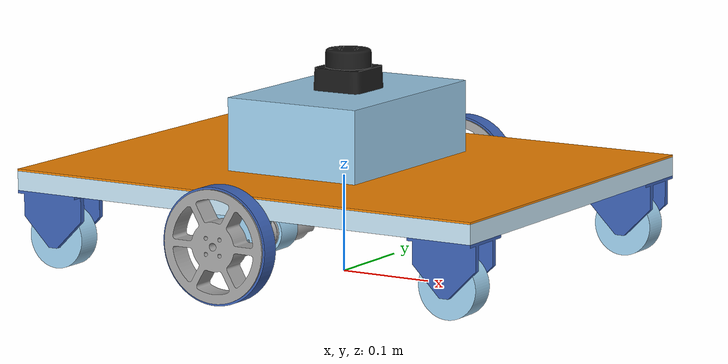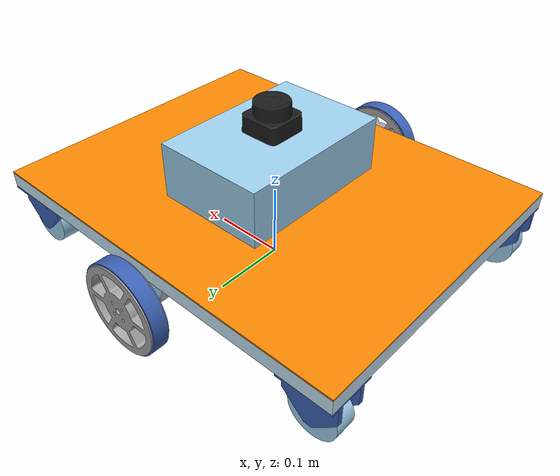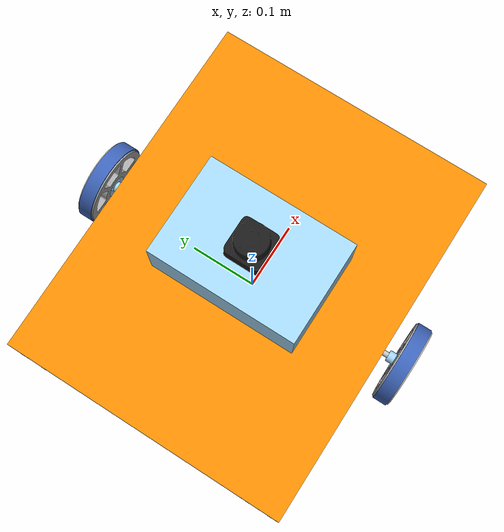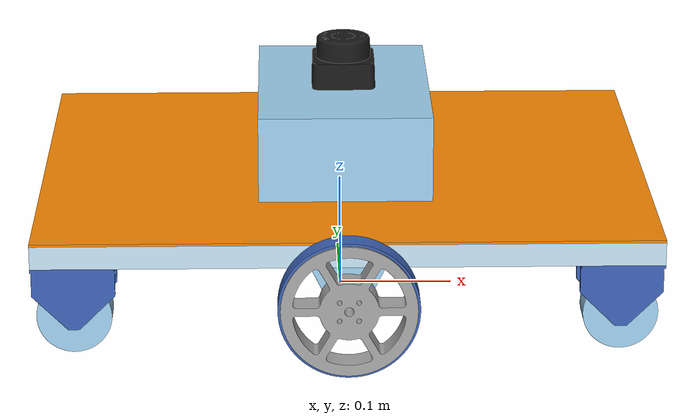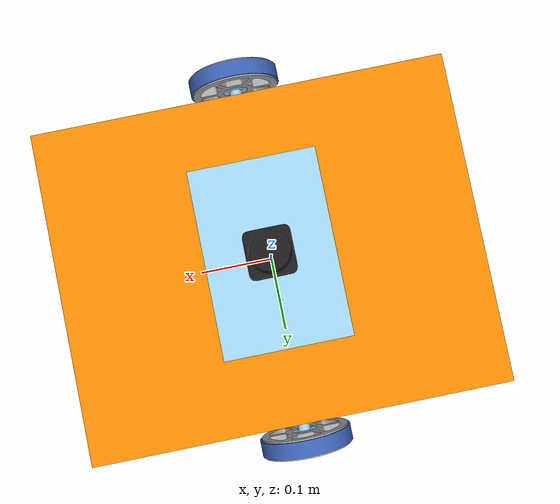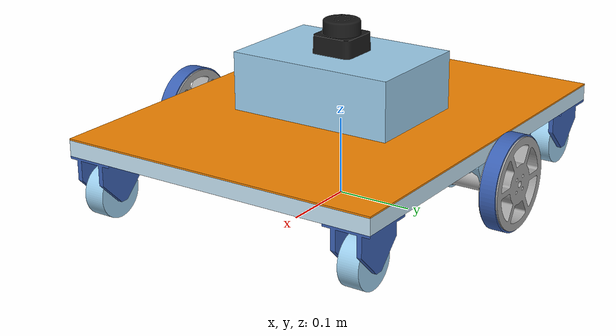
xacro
<?xml version="1.0" ?>
<robot name="amrbot" xmlns:xacro="http://www.ros.org/wiki/xacro">

  <xacro:arg name="sim" default="false"/>

  <xacro:property name="package_name" value="amrbot_description"/>
  <xacro:property name="robot_name" value="amrbot"/>
  <xacro:property name="base_height" value="0.1" />

  <xacro:include filename="modules/base.xacro"/>
  <xacro:include filename="modules/imu.xacro"/>
  <xacro:include filename="modules/lidar.xacro"/>

  <xacro:include filename="ros2_control/amrbot.ros2_control.xacro"/>

<xacro:if value="$(arg sim)">
  <xacro:include filename="$(find amrbot_gazebo)/urdf/gazebo_plugins.xacro"/>
  <xacro:include filename="$(find amrbot_gazebo)/urdf/gazebo_properties.xacro"/>
</xacro:if>

</robot>

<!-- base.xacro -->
<!-- Generated using onshape-to-robot -->
<!-- Onshape https://cad.onshape.com/documents/4209ac7f0152411e9d4dcbf0/w/3377871fe4109e8e8f25bc5b/e/0fbba50c6d2b950b7c25afc1 -->
<robot xmlns:xacro="http://www.ros.org/wiki/xacro">

    <!-- Manual Input -->
    <link name="base_footprint"/>
    <joint name="base_joint" type="fixed">
        <parent link="base_footprint"/>
        <child link="base_link"/>
        <origin xyz="0.0 0.0 ${base_height}" rpy="0.0 0.0 0.0"/>
    </joint>

<!-- From ONSHAPE -->
  <!-- Link base_link -->
  <link name="base_link">
    <inertial>
      <origin xyz="0.00275956 0.00314761 0.00370329" rpy="0 0 0"/>
      <mass value="3.02911"/>
      <inertia ixx="0.0703877" ixy="0" ixz="0" iyy="0.095641" iyz="-0" izz="0.165746"/>
    </inertial>
    <!-- Part base_frame -->
    <visual>
      <origin xyz="0.00275956 0.00314761 -0.00866843" rpy="0 -0 0"/>
      <geometry>
        <mesh filename="package://${package_name}/meshes/base_frame.stl"/>
      </geometry>
      <material name="base_frame_material">
        <color rgba="0.768627 0.886275 0.952941 1"/>
      </material>
    </visual>
    <collision>
      <origin xyz="0.00275956 0.00314761 -0.00866843" rpy="0 -0 0"/>
      <geometry>
        <mesh filename="package://${package_name}/meshes/base_frame.stl"/>
      </geometry>
    </collision>
    <!-- Part pvc -->
    <visual>
      <origin xyz="0.00275956 0.00314761 -0.00866843" rpy="0 -0 0"/>
      <geometry>
        <mesh filename="package://${package_name}/meshes/pvc.stl"/>
      </geometry>
      <material name="pvc_material">
        <color rgba="0.972549 0.529412 0.00392157 1"/>
      </material>
    </visual>
    <collision>
      <origin xyz="0.00275956 0.00314761 -0.00866843" rpy="0 -0 0"/>
      <geometry>
        <mesh filename="package://${package_name}/meshes/pvc.stl"/>
      </geometry>
    </collision>
  </link>
  <!-- Link motor_assy -->
  <link name="motor_assy_link">
    <inertial>
      <origin xyz="-4.04e-10 0.051266 -0.0214069" rpy="0 0 0"/>
      <mass value="0.31371"/>
      <inertia ixx="0.000353958" ixy="-8e-12" ixz="1e-12" iyy="7.02813e-05" iyz="8.30983e-06" izz="0.000349864"/>
    </inertial>
    <!-- Part pg36_body -->
    <visual>
      <origin xyz="0 -0.007 -0.023" rpy="1.5708 -1.5708 0"/>
      <geometry>
        <mesh filename="package://${package_name}/meshes/pg36_body.stl"/>
      </geometry>
      <material name="pg36_body_material">
        <color rgba="0.74902 0.74902 0.74902 1"/>
      </material>
    </visual>
    <collision>
      <origin xyz="0 -0.007 -0.023" rpy="1.5708 -1.5708 0"/>
      <geometry>
        <mesh filename="package://${package_name}/meshes/pg36_body.stl"/>
      </geometry>
    </collision>
    <!-- Part bracket_body -->
    <visual>
      <origin xyz="0 -0.0072 -0.023" rpy="-1.5708 -0 0"/>
      <geometry>
        <mesh filename="package://${package_name}/meshes/bracket_body.stl"/>
      </geometry>
      <material name="bracket_body_material">
        <color rgba="0.615686 0.811765 0.929412 1"/>
      </material>
    </visual>
    <collision>
      <origin xyz="0 -0.0072 -0.023" rpy="-1.5708 -0 0"/>
      <geometry>
        <mesh filename="package://${package_name}/meshes/bracket_body.stl"/>
      </geometry>
    </collision>
    <!-- Part bracket_shaft -->
    <visual>
      <origin xyz="0 -0.01 -0.023" rpy="-1.5708 -0 0"/>
      <geometry>
        <mesh filename="package://${package_name}/meshes/bracket_shaft.stl"/>
      </geometry>
      <material name="bracket_shaft_material">
        <color rgba="0.615686 0.811765 0.929412 1"/>
      </material>
    </visual>
    <collision>
      <origin xyz="0 -0.01 -0.023" rpy="-1.5708 -0 0"/>
      <geometry>
        <mesh filename="package://${package_name}/meshes/bracket_shaft.stl"/>
      </geometry>
    </collision>
    <!-- Part pg36_shaft -->
    <visual>
      <origin xyz="0 -0.007 -0.023" rpy="1.5708 -1.5708 0"/>
      <geometry>
        <mesh filename="package://${package_name}/meshes/pg36_shaft.stl"/>
      </geometry>
      <material name="pg36_shaft_material">
        <color rgba="0.74902 0.74902 0.74902 1"/>
      </material>
    </visual>
    <collision>
      <origin xyz="0 -0.007 -0.023" rpy="1.5708 -1.5708 0"/>
      <geometry>
        <mesh filename="package://${package_name}/meshes/pg36_shaft.stl"/>
      </geometry>
    </collision>
  </link>
  <!-- Link wheel_assy -->
  <link name="wheel_assy_link">
    <inertial>
      <origin xyz="0 0 0.00850131" rpy="0 0 0"/>
      <mass value="0.200936"/>
      <inertia ixx="0.000194669" ixy="0" ixz="-0" iyy="0.000194669" iyz="-0" izz="0.000368237"/>
    </inertial>
    <!-- Part wheel -->
    <visual>
      <origin xyz="0 0 0" rpy="1.5708 -0 0"/>
      <geometry>
        <mesh filename="package://${package_name}/meshes/wheel.stl"/>
      </geometry>
      <material name="wheel_material">
        <color rgba="0.647059 0.647059 0.647059 1"/>
      </material>
    </visual>
    <collision>
      <origin xyz="0 0 0" rpy="1.5708 -0 0"/>
      <geometry>
        <mesh filename="package://${package_name}/meshes/wheel.stl"/>
      </geometry>
    </collision>
    <!-- Part tyre -->
    <visual>
      <origin xyz="0 0 0" rpy="1.5708 -0 0"/>
      <geometry>
        <mesh filename="package://${package_name}/meshes/tyre.stl"/>
      </geometry>
      <material name="tyre_material">
        <color rgba="0.231373 0.380392 0.705882 1"/>
      </material>
    </visual>
    <collision>
      <origin xyz="0 0 0" rpy="1.5708 -0 0"/>
      <geometry>
        <mesh filename="package://${package_name}/meshes/tyre.stl"/>
      </geometry>
    </collision>
    <!-- Part 8mm_flange_hub -->
    <visual>
      <origin xyz="0 0 0" rpy="1.5708 -0 0"/>
      <geometry>
        <mesh filename="package://${package_name}/meshes/8mm_flange_hub.stl"/>
      </geometry>
      <material name="8mm_flange_hub_material">
        <color rgba="0.615686 0.811765 0.929412 1"/>
      </material>
    </visual>
    <collision>
      <origin xyz="0 0 0" rpy="1.5708 -0 0"/>
      <geometry>
        <mesh filename="package://${package_name}/meshes/8mm_flange_hub.stl"/>
      </geometry>
    </collision>
  </link>
  <!-- Joint from motor_assy to wheel_assy -->
  <joint name="left_wheel_joint" type="continuous">
    <origin xyz="0 -0.0283 -0.023" rpy="1.5708 -1.5708 0"/>
    <parent link="motor_assy_link"/>
    <child link="wheel_assy_link"/>
    <axis xyz="0 0 1"/>
    <limit effort="10" velocity="10"/>
  </joint>
  <!-- Joint from base_link to motor_assy -->
  <joint name="left_motor_joint" type="fixed">
    <origin xyz="0.00275956 0.203148 -0.00866843" rpy="0 -0 3.14159"/>
    <parent link="base_link"/>
    <child link="motor_assy_link"/>
    <axis xyz="0 0 1"/>
    <limit effort="10" velocity="10"/>
  </joint>
  <!-- Link motor_assy_2 -->
  <link name="motor_assy_2_link">
    <inertial>
      <origin xyz="-4.04e-10 0.051266 -0.0214069" rpy="0 0 0"/>
      <mass value="0.31371"/>
      <inertia ixx="0.000353958" ixy="-8e-12" ixz="1e-12" iyy="7.02813e-05" iyz="8.30983e-06" izz="0.000349864"/>
    </inertial>
    <!-- Part pg36_body_2 -->
    <visual>
      <origin xyz="0 -0.007 -0.023" rpy="1.5708 -1.5708 0"/>
      <geometry>
        <mesh filename="package://${package_name}/meshes/pg36_body.stl"/>
      </geometry>
      <material name="pg36_body_2_material">
        <color rgba="0.74902 0.74902 0.74902 1"/>
      </material>
    </visual>
    <collision>
      <origin xyz="0 -0.007 -0.023" rpy="1.5708 -1.5708 0"/>
      <geometry>
        <mesh filename="package://${package_name}/meshes/pg36_body.stl"/>
      </geometry>
    </collision>
    <!-- Part bracket_body_2 -->
    <visual>
      <origin xyz="0 -0.0072 -0.023" rpy="-1.5708 -0 0"/>
      <geometry>
        <mesh filename="package://${package_name}/meshes/bracket_body.stl"/>
      </geometry>
      <material name="bracket_body_2_material">
        <color rgba="0.615686 0.811765 0.929412 1"/>
      </material>
    </visual>
    <collision>
      <origin xyz="0 -0.0072 -0.023" rpy="-1.5708 -0 0"/>
      <geometry>
        <mesh filename="package://${package_name}/meshes/bracket_body.stl"/>
      </geometry>
    </collision>
    <!-- Part bracket_shaft_2 -->
    <visual>
      <origin xyz="0 -0.01 -0.023" rpy="-1.5708 -0 0"/>
      <geometry>
        <mesh filename="package://${package_name}/meshes/bracket_shaft.stl"/>
      </geometry>
      <material name="bracket_shaft_2_material">
        <color rgba="0.615686 0.811765 0.929412 1"/>
      </material>
    </visual>
    <collision>
      <origin xyz="0 -0.01 -0.023" rpy="-1.5708 -0 0"/>
      <geometry>
        <mesh filename="package://${package_name}/meshes/bracket_shaft.stl"/>
      </geometry>
    </collision>
    <!-- Part pg36_shaft_2 -->
    <visual>
      <origin xyz="0 -0.007 -0.023" rpy="1.5708 -1.5708 0"/>
      <geometry>
        <mesh filename="package://${package_name}/meshes/pg36_shaft.stl"/>
      </geometry>
      <material name="pg36_shaft_2_material">
        <color rgba="0.74902 0.74902 0.74902 1"/>
      </material>
    </visual>
    <collision>
      <origin xyz="0 -0.007 -0.023" rpy="1.5708 -1.5708 0"/>
      <geometry>
        <mesh filename="package://${package_name}/meshes/pg36_shaft.stl"/>
      </geometry>
    </collision>
  </link>
  <!-- Link wheel_assy_2 -->
  <link name="wheel_assy_2_link">
    <inertial>
      <origin xyz="0 0 0.0115013" rpy="0 0 0"/>
      <mass value="0.200936"/>
      <inertia ixx="0.000194669" ixy="0" ixz="-0" iyy="0.000194669" iyz="-0" izz="0.000368237"/>
    </inertial>
    <!-- Part wheel_2 -->
    <visual>
      <origin xyz="0 0 0.003" rpy="1.5708 -0 0"/>
      <geometry>
        <mesh filename="package://${package_name}/meshes/wheel.stl"/>
      </geometry>
      <material name="wheel_2_material">
        <color rgba="0.647059 0.647059 0.647059 1"/>
      </material>
    </visual>
    <collision>
      <origin xyz="0 0 0.003" rpy="1.5708 -0 0"/>
      <geometry>
        <mesh filename="package://${package_name}/meshes/wheel.stl"/>
      </geometry>
    </collision>
    <!-- Part tyre_2 -->
    <visual>
      <origin xyz="0 0 0.003" rpy="1.5708 -0 0"/>
      <geometry>
        <mesh filename="package://${package_name}/meshes/tyre.stl"/>
      </geometry>
      <material name="tyre_2_material">
        <color rgba="0.231373 0.380392 0.705882 1"/>
      </material>
    </visual>
    <collision>
      <origin xyz="0 0 0.003" rpy="1.5708 -0 0"/>
      <geometry>
        <mesh filename="package://${package_name}/meshes/tyre.stl"/>
      </geometry>
    </collision>
    <!-- Part 8mm_flange_hub_2 -->
    <visual>
      <origin xyz="0 0 0.003" rpy="1.5708 -0 0"/>
      <geometry>
        <mesh filename="package://${package_name}/meshes/8mm_flange_hub.stl"/>
      </geometry>
      <material name="8mm_flange_hub_2_material">
        <color rgba="0.615686 0.811765 0.929412 1"/>
      </material>
    </visual>
    <collision>
      <origin xyz="0 0 0.003" rpy="1.5708 -0 0"/>
      <geometry>
        <mesh filename="package://${package_name}/meshes/8mm_flange_hub.stl"/>
      </geometry>
    </collision>
  </link>
  <!-- Joint from motor_assy_2 to wheel_assy_2 -->
  <joint name="right_wheel_joint" type="continuous">
    <origin xyz="0 -0.0283 -0.023" rpy="1.5708 -1.5708 0"/>
    <parent link="motor_assy_2_link"/>
    <child link="wheel_assy_2_link"/>
    <axis xyz="0 0 -1"/>
    <limit effort="10" velocity="10"/>
  </joint>
  <!-- Joint from base_link to motor_assy_2 -->
  <joint name="right_motor_joint" type="fixed">
    <origin xyz="0.00275956 -0.196852 -0.00866843" rpy="0 -0 0"/>
    <parent link="base_link"/>
    <child link="motor_assy_2_link"/>
    <axis xyz="0 0 1"/>
    <limit effort="10" velocity="10"/>
  </joint>
  <!-- Link caster_frame -->
  <link name="caster_frame_link">
    <inertial>
      <origin xyz="0 -0 -0.0201897" rpy="0 0 0"/>
      <mass value="0.0626507"/>
      <inertia ixx="3.42636e-05" ixy="0" ixz="0" iyy="3.81143e-05" iyz="0" izz="3.79824e-05"/>
    </inertial>
    <!-- Part caster_frame -->
    <visual>
      <origin xyz="0 0.0135 -0.04825" rpy="0 -0 0"/>
      <geometry>
        <mesh filename="package://${package_name}/meshes/caster_frame.stl"/>
      </geometry>
      <material name="caster_frame_material">
        <color rgba="0.231373 0.380392 0.705882 1"/>
      </material>
    </visual>
    <collision>
      <origin xyz="0 0.0135 -0.04825" rpy="0 -0 0"/>
      <geometry>
        <mesh filename="package://${package_name}/meshes/caster_frame.stl"/>
      </geometry>
    </collision>
  </link>
  <!-- Link caster_wheel -->
  <link name="caster_wheel_link">
    <inertial>
      <origin xyz="0 -0 -0.0135" rpy="0 0 0"/>
      <mass value="0.122328"/>
      <inertia ixx="3.90245e-05" ixy="0" ixz="0" iyy="3.90245e-05" iyz="0" izz="6.31861e-05"/>
    </inertial>
    <!-- Part caster_wheel -->
    <visual>
      <origin xyz="0 0 0" rpy="1.5708 -0 0"/>
      <geometry>
        <mesh filename="package://${package_name}/meshes/caster_wheel.stl"/>
      </geometry>
      <material name="caster_wheel_material">
        <color rgba="0.615686 0.811765 0.929412 1"/>
      </material>
    </visual>
    <collision>
      <origin xyz="0 0 0" rpy="1.5708 -0 0"/>
      <geometry>
        <mesh filename="package://${package_name}/meshes/caster_wheel.stl"/>
      </geometry>
    </collision>
  </link>
  <!-- Joint from caster_frame to caster_wheel -->
  <joint name="lf_caster_wheel_joint" type="continuous">
    <origin xyz="0 0.0135 -0.04825" rpy="-1.5708 -0 0"/>
    <parent link="caster_frame_link"/>
    <child link="caster_wheel_link"/>
    <axis xyz="0 0 1"/>
    <limit effort="10" velocity="10"/>
  </joint>
  <!-- Joint from base_link to caster_frame -->
  <joint name="lf_caster_frame_joint" type="fixed">
    <origin xyz="0.23276 0.183148 -0.00866843" rpy="0 -0 0"/>
    <parent link="base_link"/>
    <child link="caster_frame_link"/>
    <axis xyz="0 0 1"/>
    <limit effort="10" velocity="10"/>
  </joint>
  <!-- Link caster_frame_2 -->
  <link name="caster_frame_2_link">
    <inertial>
      <origin xyz="0 -0 -0.0201897" rpy="0 0 0"/>
      <mass value="0.0626507"/>
      <inertia ixx="3.42636e-05" ixy="0" ixz="0" iyy="3.81143e-05" iyz="0" izz="3.79824e-05"/>
    </inertial>
    <!-- Part caster_frame_2 -->
    <visual>
      <origin xyz="0 0.0135 -0.04825" rpy="0 -0 0"/>
      <geometry>
        <mesh filename="package://${package_name}/meshes/caster_frame.stl"/>
      </geometry>
      <material name="caster_frame_2_material">
        <color rgba="0.231373 0.380392 0.705882 1"/>
      </material>
    </visual>
    <collision>
      <origin xyz="0 0.0135 -0.04825" rpy="0 -0 0"/>
      <geometry>
        <mesh filename="package://${package_name}/meshes/caster_frame.stl"/>
      </geometry>
    </collision>
  </link>
  <!-- Link caster_wheel_2 -->
  <link name="caster_wheel_2_link">
    <inertial>
      <origin xyz="0 -0 -0.0135" rpy="0 0 0"/>
      <mass value="0.122328"/>
      <inertia ixx="3.90245e-05" ixy="0" ixz="0" iyy="3.90245e-05" iyz="0" izz="6.31861e-05"/>
    </inertial>
    <!-- Part caster_wheel_2 -->
    <visual>
      <origin xyz="0 0 0" rpy="1.5708 -0 0"/>
      <geometry>
        <mesh filename="package://${package_name}/meshes/caster_wheel.stl"/>
      </geometry>
      <material name="caster_wheel_2_material">
        <color rgba="0.615686 0.811765 0.929412 1"/>
      </material>
    </visual>
    <collision>
      <origin xyz="0 0 0" rpy="1.5708 -0 0"/>
      <geometry>
        <mesh filename="package://${package_name}/meshes/caster_wheel.stl"/>
      </geometry>
    </collision>
  </link>
  <!-- Joint from caster_frame_2 to caster_wheel_2 -->
  <joint name="lb_caster_wheel_joint" type="continuous">
    <origin xyz="0 0.0135 -0.04825" rpy="-1.5708 -0 0"/>
    <parent link="caster_frame_2_link"/>
    <child link="caster_wheel_2_link"/>
    <axis xyz="0 0 1"/>
    <limit effort="10" velocity="10"/>
  </joint>
  <!-- Joint from base_link to caster_frame_2 -->
  <joint name="lb_caster_frame_joint" type="fixed">
    <origin xyz="-0.22724 0.183148 -0.00866843" rpy="0 -0 0"/>
    <parent link="base_link"/>
    <child link="caster_frame_2_link"/>
    <axis xyz="0 0 1"/>
    <limit effort="10" velocity="10"/>
  </joint>
  <!-- Link caster_frame_3 -->
  <link name="caster_frame_3_link">
    <inertial>
      <origin xyz="0 -0 -0.0201897" rpy="0 0 0"/>
      <mass value="0.0626507"/>
      <inertia ixx="3.42636e-05" ixy="0" ixz="0" iyy="3.81143e-05" iyz="0" izz="3.79824e-05"/>
    </inertial>
    <!-- Part caster_frame_3 -->
    <visual>
      <origin xyz="0 0.0135 -0.04825" rpy="0 -0 0"/>
      <geometry>
        <mesh filename="package://${package_name}/meshes/caster_frame.stl"/>
      </geometry>
      <material name="caster_frame_3_material">
        <color rgba="0.231373 0.380392 0.705882 1"/>
      </material>
    </visual>
    <collision>
      <origin xyz="0 0.0135 -0.04825" rpy="0 -0 0"/>
      <geometry>
        <mesh filename="package://${package_name}/meshes/caster_frame.stl"/>
      </geometry>
    </collision>
  </link>
  <!-- Link caster_wheel_3 -->
  <link name="caster_wheel_3_link">
    <inertial>
      <origin xyz="0 0 -0.0135" rpy="0 0 0"/>
      <mass value="0.122328"/>
      <inertia ixx="3.90245e-05" ixy="0" ixz="0" iyy="3.90245e-05" iyz="0" izz="6.31861e-05"/>
    </inertial>
    <!-- Part caster_wheel_3 -->
    <visual>
      <origin xyz="0 0 -0.027" rpy="-1.5708 -0 0"/>
      <geometry>
        <mesh filename="package://${package_name}/meshes/caster_wheel.stl"/>
      </geometry>
      <material name="caster_wheel_3_material">
        <color rgba="0.615686 0.811765 0.929412 1"/>
      </material>
    </visual>
    <collision>
      <origin xyz="0 0 -0.027" rpy="-1.5708 -0 0"/>
      <geometry>
        <mesh filename="package://${package_name}/meshes/caster_wheel.stl"/>
      </geometry>
    </collision>
  </link>
  <!-- Joint from caster_frame_3 to caster_wheel_3 -->
  <joint name="rf_caster_wheel_joint" type="continuous">
    <origin xyz="0 -0.0135 -0.04825" rpy="1.5708 -0 0"/>
    <parent link="caster_frame_3_link"/>
    <child link="caster_wheel_3_link"/>
    <axis xyz="0 0 1"/>
    <limit effort="10" velocity="10"/>
  </joint>
  <!-- Joint from base_link to caster_frame_3 -->
  <joint name="rf_caster_frame_joint" type="fixed">
    <origin xyz="0.23276 -0.176852 -0.00866843" rpy="0 -0 0"/>
    <parent link="base_link"/>
    <child link="caster_frame_3_link"/>
    <axis xyz="0 0 1"/>
    <limit effort="10" velocity="10"/>
  </joint>
  <!-- Link caster_frame_4 -->
  <link name="caster_frame_4_link">
    <inertial>
      <origin xyz="0 -0 -0.0201897" rpy="0 0 0"/>
      <mass value="0.0626507"/>
      <inertia ixx="3.42636e-05" ixy="0" ixz="0" iyy="3.81143e-05" iyz="0" izz="3.79824e-05"/>
    </inertial>
    <!-- Part caster_frame_4 -->
    <visual>
      <origin xyz="0 0.0135 -0.04825" rpy="0 -0 0"/>
      <geometry>
        <mesh filename="package://${package_name}/meshes/caster_frame.stl"/>
      </geometry>
      <material name="caster_frame_4_material">
        <color rgba="0.231373 0.380392 0.705882 1"/>
      </material>
    </visual>
    <collision>
      <origin xyz="0 0.0135 -0.04825" rpy="0 -0 0"/>
      <geometry>
        <mesh filename="package://${package_name}/meshes/caster_frame.stl"/>
      </geometry>
    </collision>
  </link>
  <!-- Link caster_wheel_4 -->
  <link name="caster_wheel_4_link">
    <inertial>
      <origin xyz="0 0 -0.0135" rpy="0 0 0"/>
      <mass value="0.122328"/>
      <inertia ixx="3.90245e-05" ixy="0" ixz="0" iyy="3.90245e-05" iyz="0" izz="6.31861e-05"/>
    </inertial>
    <!-- Part caster_wheel_4 -->
    <visual>
      <origin xyz="0 0 -0.027" rpy="-1.5708 -0 0"/>
      <geometry>
        <mesh filename="package://${package_name}/meshes/caster_wheel.stl"/>
      </geometry>
      <material name="caster_wheel_4_material">
        <color rgba="0.615686 0.811765 0.929412 1"/>
      </material>
    </visual>
    <collision>
      <origin xyz="0 0 -0.027" rpy="-1.5708 -0 0"/>
      <geometry>
        <mesh filename="package://${package_name}/meshes/caster_wheel.stl"/>
      </geometry>
    </collision>
  </link>
  <!-- Joint from caster_frame_4 to caster_wheel_4 -->
  <joint name="rb_caster_wheel_joint" type="continuous">
    <origin xyz="0 -0.0135 -0.04825" rpy="1.5708 -0 0"/>
    <parent link="caster_frame_4_link"/>
    <child link="caster_wheel_4_link"/>
    <axis xyz="0 0 1"/>
    <limit effort="10" velocity="10"/>
  </joint>
  <!-- Joint from base_link to caster_frame_4 -->
  <joint name="rb_caster_frame_joint" type="fixed">
    <origin xyz="-0.22724 -0.176852 -0.00866843" rpy="0 -0 0"/>
    <parent link="base_link"/>
    <child link="caster_frame_4_link"/>
    <axis xyz="0 0 1"/>
    <limit effort="10" velocity="10"/>
  </joint>

</robot>

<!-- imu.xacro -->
<robot xmlns:xacro="http://www.ros.org/wiki/xacro">

    <!-- Link imu -->
  <link name="imu_link">
    <inertial>
      <origin xyz="0 0 -0.005" rpy="0 0 0"/>
      <mass value="0.0028125"/>
      <inertia ixx="7.6172e-08" ixy="0" ixz="0" iyy="7.6172e-08" iyz="0" izz="1.05469e-07"/>
    </inertial>
    <!-- Part imu -->
    <visual>
      <origin xyz="-0 0 -0.01" rpy="0 -0 0"/>
      <geometry>
        <mesh filename="package://${package_name}/meshes/imu.stl"/>
      </geometry>
      <material name="imu_material">
        <color rgba="0.615686 0.811765 0.929412 1"/>
      </material>
    </visual>
    <collision>
      <origin xyz="-0 0 -0.01" rpy="0 -0 0"/>
      <geometry>
        <mesh filename="package://${package_name}/meshes/imu.stl"/>
      </geometry>
    </collision>
  </link>

  <!-- Joint from base_link to imu -->
  <joint name="imu_joint" type="fixed">
    <origin xyz="0.00275956 0.00314761 0.0133316" rpy="0 0 3.14159"/>
    <parent link="base_link"/>
    <child link="imu_link"/>
    <axis xyz="0 0 1"/>
    <limit effort="10" velocity="10"/>
  </joint>

</robot>

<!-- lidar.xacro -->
<robot xmlns:xacro="http://www.ros.org/wiki/xacro">

  <!-- Link electrical_box -->
  <link name="electrical_box_link">
    <inertial>
      <origin xyz="-0 -0 0.0218899" rpy="0 0 0"/>
      <mass value="0.619434"/>
      <inertia ixx="0.00397832" ixy="0" ixz="0" iyy="0.00227098" iyz="0" izz="0.00553297"/>
    </inertial>
    <!-- Part electrical_box -->
    <visual>
      <origin xyz="0 -0 0.069" rpy="3.14159 -0 0"/>
      <geometry>
        <mesh filename="package://${package_name}/meshes/electrical_box.stl"/>
      </geometry>
      <material name="electrical_box_material">
        <color rgba="0.615686 0.811765 0.929412 1"/>
      </material>
    </visual>
    <collision>
      <origin xyz="0 -0 0.069" rpy="3.14159 -0 0"/>
      <geometry>
        <mesh filename="package://${package_name}/meshes/electrical_box.stl"/>
      </geometry>
    </collision>
  </link>

  <!-- Link lidar -->
  <link name="lidar_link">
    <inertial>
      <origin xyz="-8.43015e-07 4.26207e-06 -0.0179994" rpy="0 0 0"/>
      <mass value="0.105276"/>
      <inertia ixx="3.59683e-05" ixy="-2.1e-10" ixz="-3.82e-10" iyy="3.59741e-05" iyz="1.0203e-08" izz="4.43003e-05"/>
    </inertial>
    <!-- Part lidar -->
    <visual>
      <origin xyz="0.000613921 -0.000614591 0" rpy="3.14159 -0 0"/>
      <geometry>
        <mesh filename="package://${package_name}/meshes/lidar.stl"/>
      </geometry>
      <material name="lidar_material">
        <color rgba="0.0980392 0.0980392 0.0980392 1"/>
      </material>
    </visual>
    <collision>
      <origin xyz="0.000613921 -0.000614591 0" rpy="3.14159 -0 0"/>
      <geometry>
        <mesh filename="package://${package_name}/meshes/lidar.stl"/>
      </geometry>
    </collision>
  </link>

  <!-- Joint from electrical_box to lidar -->
  <joint name="lidar_joint" type="fixed">
    <origin xyz="-0 -0 -0.006" rpy="0 -0 -1.5708"/>
    <parent link="electrical_box_link"/>
    <child link="lidar_link"/>
    <axis xyz="0 0 1"/>
    <limit effort="10" velocity="10"/>
  </joint>

  <!-- Joint from base_link to electrical_box -->
  <joint name="electrical_box_joint" type="fixed">
    <origin xyz="0.00275956 0.00314761 0.0833316" rpy="3.14159 -0 0"/>
    <parent link="base_link"/>
    <child link="electrical_box_link"/>
    <axis xyz="0 0 1"/>
    <limit effort="10" velocity="10"/>
  </joint>

</robot>
